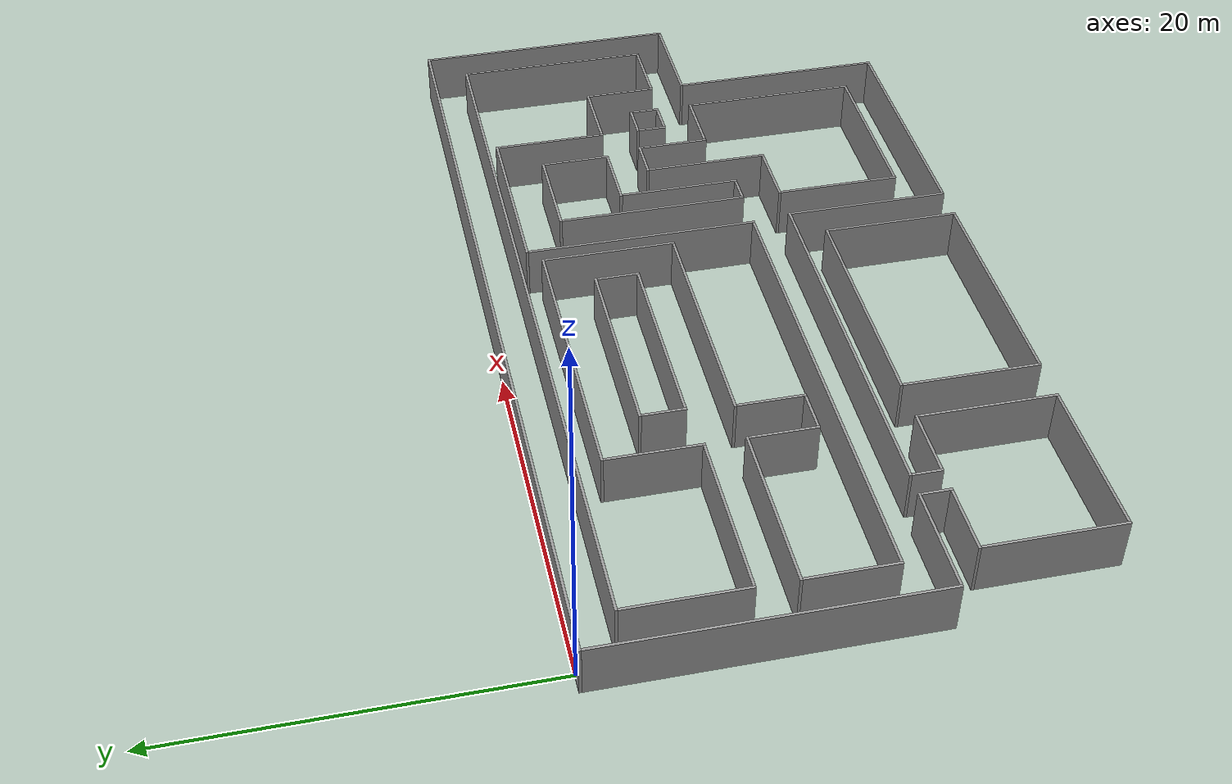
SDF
<?xml version="1.0" ?>
<sdf version="1.4">
  <model name="MultiLoops">
    <static>1</static>
    <link name="Wall_0">
      <collision name="Wall_0_Collision">
        <geometry>
          <box>
            <size>49.20000 0.15000 3.00000</size>
          </box>
        </geometry>
        <pose>24.75000 -0.22500 0 0 0 0.00000</pose>
      </collision>
      <visual name="Wall_0_Visual">
        <geometry>
          <box>
            <size>49.20000 0.15000 3.00000</size>
          </box>
        </geometry>
        <material>
          <script>
            <uri>file://media/materials/scripts/gazebo.material</uri>
            <name>Gazebo/Grey</name>
          </script>
        </material>
        <pose>24.75000 -0.22500 0 0 0 0.00000</pose>
      </visual>
    </link>
    <link name="Wall_1">
      <collision name="Wall_1_Collision">
        <geometry>
          <box>
            <size>0.15000 18.15000 3.00000</size>
          </box>
        </geometry>
        <pose>0.22500 -9.37500 0 0 0 0.00000</pose>
      </collision>
      <visual name="Wall_1_Visual">
        <geometry>
          <box>
            <size>0.15000 18.15000 3.00000</size>
          </box>
        </geometry>
        <material>
          <script>
            <uri>file://media/materials/scripts/gazebo.material</uri>
            <name>Gazebo/Grey</name>
          </script>
        </material>
        <pose>0.22500 -9.37500 0 0 0 0.00000</pose>
      </visual>
    </link>
    <link name="Wall_2">
      <collision name="Wall_2_Collision">
        <geometry>
          <box>
            <size>0.15000 15.15000 3.00000</size>
          </box>
        </geometry>
        <pose>49.27500 -7.87500 0 0 0 0.00000</pose>
      </collision>
      <visual name="Wall_2_Visual">
        <geometry>
          <box>
            <size>0.15000 15.15000 3.00000</size>
          </box>
        </geometry>
        <material>
          <script>
            <uri>file://media/materials/scripts/gazebo.material</uri>
            <name>Gazebo/Grey</name>
          </script>
        </material>
        <pose>49.27500 -7.87500 0 0 0 0.00000</pose>
      </visual>
    </link>
    <link name="Wall_3">
      <collision name="Wall_3_Collision">
        <geometry>
          <box>
            <size>45.15000 0.15000 3.00000</size>
          </box>
        </geometry>
        <pose>24.67500 -2.32500 0 0 0 0.00000</pose>
      </collision>
      <visual name="Wall_3_Visual">
        <geometry>
          <box>
            <size>45.15000 0.15000 3.00000</size>
          </box>
        </geometry>
        <material>
          <script>
            <uri>file://media/materials/scripts/gazebo.material</uri>
            <name>Gazebo/Grey</name>
          </script>
        </material>
        <pose>24.67500 -2.32500 0 0 0 0.00000</pose>
      </visual>
    </link>
    <link name="Wall_4">
      <collision name="Wall_4_Collision">
        <geometry>
          <box>
            <size>0.15000 6.60000 3.00000</size>
          </box>
        </geometry>
        <pose>2.17500 -5.70000 0 0 0 0.00000</pose>
      </collision>
      <visual name="Wall_4_Visual">
        <geometry>
          <box>
            <size>0.15000 6.60000 3.00000</size>
          </box>
        </geometry>
        <material>
          <script>
            <uri>file://media/materials/scripts/gazebo.material</uri>
            <name>Gazebo/Grey</name>
          </script>
        </material>
        <pose>2.17500 -5.70000 0 0 0 0.00000</pose>
      </visual>
    </link>
    <link name="Wall_5">
      <collision name="Wall_5_Collision">
        <geometry>
          <box>
            <size>0.15000 11.10000 3.00000</size>
          </box>
        </geometry>
        <pose>47.17500 -7.95000 0 0 0 0.00000</pose>
      </collision>
      <visual name="Wall_5_Visual">
        <geometry>
          <box>
            <size>0.15000 11.10000 3.00000</size>
          </box>
        </geometry>
        <material>
          <script>
            <uri>file://media/materials/scripts/gazebo.material</uri>
            <name>Gazebo/Grey</name>
          </script>
        </material>
        <pose>47.17500 -7.95000 0 0 0 0.00000</pose>
      </visual>
    </link>
    <link name="Wall_6">
      <collision name="Wall_6_Collision">
        <geometry>
          <box>
            <size>10.35000 0.15000 3.00000</size>
          </box>
        </geometry>
        <pose>33.82500 -2.92500 0 0 0 0.00000</pose>
      </collision>
      <visual name="Wall_6_Visual">
        <geometry>
          <box>
            <size>10.35000 0.15000 3.00000</size>
          </box>
        </geometry>
        <material>
          <script>
            <uri>file://media/materials/scripts/gazebo.material</uri>
            <name>Gazebo/Grey</name>
          </script>
        </material>
        <pose>33.82500 -2.92500 0 0 0 0.00000</pose>
      </visual>
    </link>
    <link name="Wall_7">
      <collision name="Wall_7_Collision">
        <geometry>
          <box>
            <size>0.15000 13.20000 3.00000</size>
          </box>
        </geometry>
        <pose>28.72500 -9.60000 0 0 0 0.00000</pose>
      </collision>
      <visual name="Wall_7_Visual">
        <geometry>
          <box>
            <size>0.15000 13.20000 3.00000</size>
          </box>
        </geometry>
        <material>
          <script>
            <uri>file://media/materials/scripts/gazebo.material</uri>
            <name>Gazebo/Grey</name>
          </script>
        </material>
        <pose>28.72500 -9.60000 0 0 0 0.00000</pose>
      </visual>
    </link>
    <link name="Wall_8">
      <collision name="Wall_8_Collision">
        <geometry>
          <box>
            <size>0.15000 6.45000 3.00000</size>
          </box>
        </geometry>
        <pose>38.92500 -6.22500 0 0 0 0.00000</pose>
      </collision>
      <visual name="Wall_8_Visual">
        <geometry>
          <box>
            <size>0.15000 6.45000 3.00000</size>
          </box>
        </geometry>
        <material>
          <script>
            <uri>file://media/materials/scripts/gazebo.material</uri>
            <name>Gazebo/Grey</name>
          </script>
        </material>
        <pose>38.92500 -6.22500 0 0 0 0.00000</pose>
      </visual>
    </link>
    <link name="Wall_9">
      <collision name="Wall_9_Collision">
        <geometry>
          <box>
            <size>16.20000 0.15000 3.00000</size>
          </box>
        </geometry>
        <pose>19.80000 -3.67500 0 0 0 0.00000</pose>
      </collision>
      <visual name="Wall_9_Visual">
        <geometry>
          <box>
            <size>16.20000 0.15000 3.00000</size>
          </box>
        </geometry>
        <material>
          <script>
            <uri>file://media/materials/scripts/gazebo.material</uri>
            <name>Gazebo/Grey</name>
          </script>
        </material>
        <pose>19.80000 -3.67500 0 0 0 0.00000</pose>
      </visual>
    </link>
    <link name="Wall_10">
      <collision name="Wall_10_Collision">
        <geometry>
          <box>
            <size>0.15000 5.25000 3.00000</size>
          </box>
        </geometry>
        <pose>11.77500 -6.37500 0 0 0 0.00000</pose>
      </collision>
      <visual name="Wall_10_Visual">
        <geometry>
          <box>
            <size>0.15000 5.25000 3.00000</size>
          </box>
        </geometry>
        <material>
          <script>
            <uri>file://media/materials/scripts/gazebo.material</uri>
            <name>Gazebo/Grey</name>
          </script>
        </material>
        <pose>11.77500 -6.37500 0 0 0 0.00000</pose>
      </visual>
    </link>
    <link name="Wall_11">
      <collision name="Wall_11_Collision">
        <geometry>
          <box>
            <size>0.15000 7.50000 3.00000</size>
          </box>
        </geometry>
        <pose>27.82500 -7.50000 0 0 0 0.00000</pose>
      </collision>
      <visual name="Wall_11_Visual">
        <geometry>
          <box>
            <size>0.15000 7.50000 3.00000</size>
          </box>
        </geometry>
        <material>
          <script>
            <uri>file://media/materials/scripts/gazebo.material</uri>
            <name>Gazebo/Grey</name>
          </script>
        </material>
        <pose>27.82500 -7.50000 0 0 0 0.00000</pose>
      </visual>
    </link>
    <link name="Wall_12">
      <collision name="Wall_12_Collision">
        <geometry>
          <box>
            <size>5.70000 0.15000 3.00000</size>
          </box>
        </geometry>
        <pose>33.90000 -5.32500 0 0 0 0.00000</pose>
      </collision>
      <visual name="Wall_12_Visual">
        <geometry>
          <box>
            <size>5.70000 0.15000 3.00000</size>
          </box>
        </geometry>
        <material>
          <script>
            <uri>file://media/materials/scripts/gazebo.material</uri>
            <name>Gazebo/Grey</name>
          </script>
        </material>
        <pose>33.90000 -5.32500 0 0 0 0.00000</pose>
      </visual>
    </link>
    <link name="Wall_13">
      <collision name="Wall_13_Collision">
        <geometry>
          <box>
            <size>0.15000 10.80000 3.00000</size>
          </box>
        </geometry>
        <pose>31.12500 -10.80000 0 0 0 0.00000</pose>
      </collision>
      <visual name="Wall_13_Visual">
        <geometry>
          <box>
            <size>0.15000 10.80000 3.00000</size>
          </box>
        </geometry>
        <material>
          <script>
            <uri>file://media/materials/scripts/gazebo.material</uri>
            <name>Gazebo/Grey</name>
          </script>
        </material>
        <pose>31.12500 -10.80000 0 0 0 0.00000</pose>
      </visual>
    </link>
    <link name="Wall_14">
      <collision name="Wall_14_Collision">
        <geometry>
          <box>
            <size>0.15000 3.90000 3.00000</size>
          </box>
        </geometry>
        <pose>36.67500 -7.35000 0 0 0 0.00000</pose>
      </collision>
      <visual name="Wall_14_Visual">
        <geometry>
          <box>
            <size>0.15000 3.90000 3.00000</size>
          </box>
        </geometry>
        <material>
          <script>
            <uri>file://media/materials/scripts/gazebo.material</uri>
            <name>Gazebo/Grey</name>
          </script>
        </material>
        <pose>36.67500 -7.35000 0 0 0 0.00000</pose>
      </visual>
    </link>
    <link name="Wall_15">
      <collision name="Wall_15_Collision">
        <geometry>
          <box>
            <size>11.25000 0.15000 3.00000</size>
          </box>
        </geometry>
        <pose>20.02500 -6.22500 0 0 0 0.00000</pose>
      </collision>
      <visual name="Wall_15_Visual">
        <geometry>
          <box>
            <size>11.25000 0.15000 3.00000</size>
          </box>
        </geometry>
        <material>
          <script>
            <uri>file://media/materials/scripts/gazebo.material</uri>
            <name>Gazebo/Grey</name>
          </script>
        </material>
        <pose>20.02500 -6.22500 0 0 0 0.00000</pose>
      </visual>
    </link>
    <link name="Wall_16">
      <collision name="Wall_16_Collision">
        <geometry>
          <box>
            <size>0.15000 2.40000 3.00000</size>
          </box>
        </geometry>
        <pose>14.47500 -7.50000 0 0 0 0.00000</pose>
      </collision>
      <visual name="Wall_16_Visual">
        <geometry>
          <box>
            <size>0.15000 2.40000 3.00000</size>
          </box>
        </geometry>
        <material>
          <script>
            <uri>file://media/materials/scripts/gazebo.material</uri>
            <name>Gazebo/Grey</name>
          </script>
        </material>
        <pose>14.47500 -7.50000 0 0 0 0.00000</pose>
      </visual>
    </link>
    <link name="Wall_17">
      <collision name="Wall_17_Collision">
        <geometry>
          <box>
            <size>0.15000 2.40000 3.00000</size>
          </box>
        </geometry>
        <pose>25.57500 -7.50000 0 0 0 0.00000</pose>
      </collision>
      <visual name="Wall_17_Visual">
        <geometry>
          <box>
            <size>0.15000 2.40000 3.00000</size>
          </box>
        </geometry>
        <material>
          <script>
            <uri>file://media/materials/scripts/gazebo.material</uri>
            <name>Gazebo/Grey</name>
          </script>
        </material>
        <pose>25.57500 -7.50000 0 0 0 0.00000</pose>
      </visual>
    </link>
    <link name="Wall_18">
      <collision name="Wall_18_Collision">
        <geometry>
          <box>
            <size>10.95000 0.15000 3.00000</size>
          </box>
        </geometry>
        <pose>20.02500 -8.62500 0 0 0 0.00000</pose>
      </collision>
      <visual name="Wall_18_Visual">
        <geometry>
          <box>
            <size>10.95000 0.15000 3.00000</size>
          </box>
        </geometry>
        <material>
          <script>
            <uri>file://media/materials/scripts/gazebo.material</uri>
            <name>Gazebo/Grey</name>
          </script>
        </material>
        <pose>20.02500 -8.62500 0 0 0 0.00000</pose>
      </visual>
    </link>
    <link name="Wall_19">
      <collision name="Wall_19_Collision">
        <geometry>
          <box>
            <size>9.45000 0.15000 3.00000</size>
          </box>
        </geometry>
        <pose>6.97500 -8.92500 0 0 0 0.00000</pose>
      </collision>
      <visual name="Wall_19_Visual">
        <geometry>
          <box>
            <size>9.45000 0.15000 3.00000</size>
          </box>
        </geometry>
        <material>
          <script>
            <uri>file://media/materials/scripts/gazebo.material</uri>
            <name>Gazebo/Grey</name>
          </script>
        </material>
        <pose>6.97500 -8.92500 0 0 0 0.00000</pose>
      </visual>
    </link>
    <link name="Wall_20">
      <collision name="Wall_20_Collision">
        <geometry>
          <box>
            <size>3.90000 0.15000 3.00000</size>
          </box>
        </geometry>
        <pose>34.65000 -9.22500 0 0 0 0.00000</pose>
      </collision>
      <visual name="Wall_20_Visual">
        <geometry>
          <box>
            <size>3.90000 0.15000 3.00000</size>
          </box>
        </geometry>
        <material>
          <script>
            <uri>file://media/materials/scripts/gazebo.material</uri>
            <name>Gazebo/Grey</name>
          </script>
        </material>
        <pose>34.65000 -9.22500 0 0 0 0.00000</pose>
      </visual>
    </link>
    <link name="Wall_21">
      <collision name="Wall_21_Collision">
        <geometry>
          <box>
            <size>0.15000 6.90000 3.00000</size>
          </box>
        </geometry>
        <pose>32.77500 -12.75000 0 0 0 0.00000</pose>
      </collision>
      <visual name="Wall_21_Visual">
        <geometry>
          <box>
            <size>0.15000 6.90000 3.00000</size>
          </box>
        </geometry>
        <material>
          <script>
            <uri>file://media/materials/scripts/gazebo.material</uri>
            <name>Gazebo/Grey</name>
          </script>
        </material>
        <pose>32.77500 -12.75000 0 0 0 0.00000</pose>
      </visual>
    </link>
    <link name="Wall_22">
      <collision name="Wall_22_Collision">
        <geometry>
          <box>
            <size>4.20000 0.15000 3.00000</size>
          </box>
        </geometry>
        <pose>41.10000 -9.37500 0 0 0 0.00000</pose>
      </collision>
      <visual name="Wall_22_Visual">
        <geometry>
          <box>
            <size>4.20000 0.15000 3.00000</size>
          </box>
        </geometry>
        <material>
          <script>
            <uri>file://media/materials/scripts/gazebo.material</uri>
            <name>Gazebo/Grey</name>
          </script>
        </material>
        <pose>41.10000 -9.37500 0 0 0 0.00000</pose>
      </visual>
    </link>
    <link name="Wall_23">
      <collision name="Wall_23_Collision">
        <geometry>
          <box>
            <size>0.15000 4.05000 3.00000</size>
          </box>
        </geometry>
        <pose>43.12500 -11.47500 0 0 0 0.00000</pose>
      </collision>
      <visual name="Wall_23_Visual">
        <geometry>
          <box>
            <size>0.15000 4.05000 3.00000</size>
          </box>
        </geometry>
        <material>
          <script>
            <uri>file://media/materials/scripts/gazebo.material</uri>
            <name>Gazebo/Grey</name>
          </script>
        </material>
        <pose>43.12500 -11.47500 0 0 0 0.00000</pose>
      </visual>
    </link>
    <link name="Wall_24">
      <collision name="Wall_24_Collision">
        <geometry>
          <box>
            <size>9.75000 0.15000 3.00000</size>
          </box>
        </geometry>
        <pose>6.97500 -11.17500 0 0 0 0.00000</pose>
      </collision>
      <visual name="Wall_24_Visual">
        <geometry>
          <box>
            <size>9.75000 0.15000 3.00000</size>
          </box>
        </geometry>
        <material>
          <script>
            <uri>file://media/materials/scripts/gazebo.material</uri>
            <name>Gazebo/Grey</name>
          </script>
        </material>
        <pose>6.97500 -11.17500 0 0 0 0.00000</pose>
      </visual>
    </link>
    <link name="Wall_25">
      <collision name="Wall_25_Collision">
        <geometry>
          <box>
            <size>13.65000 0.15000 3.00000</size>
          </box>
        </geometry>
        <pose>20.92500 -11.17500 0 0 0 0.00000</pose>
      </collision>
      <visual name="Wall_25_Visual">
        <geometry>
          <box>
            <size>13.65000 0.15000 3.00000</size>
          </box>
        </geometry>
        <material>
          <script>
            <uri>file://media/materials/scripts/gazebo.material</uri>
            <name>Gazebo/Grey</name>
          </script>
        </material>
        <pose>20.92500 -11.17500 0 0 0 0.00000</pose>
      </visual>
    </link>
    <link name="Wall_26">
      <collision name="Wall_26_Collision">
        <geometry>
          <box>
            <size>0.15000 4.95000 3.00000</size>
          </box>
        </geometry>
        <pose>2.17500 -13.72500 0 0 0 0.00000</pose>
      </collision>
      <visual name="Wall_26_Visual">
        <geometry>
          <box>
            <size>0.15000 4.95000 3.00000</size>
          </box>
        </geometry>
        <material>
          <script>
            <uri>file://media/materials/scripts/gazebo.material</uri>
            <name>Gazebo/Grey</name>
          </script>
        </material>
        <pose>2.17500 -13.72500 0 0 0 0.00000</pose>
      </visual>
    </link>
    <link name="Wall_27">
      <collision name="Wall_27_Collision">
        <geometry>
          <box>
            <size>0.15000 3.75000 3.00000</size>
          </box>
        </geometry>
        <pose>11.77500 -13.12500 0 0 0 0.00000</pose>
      </collision>
      <visual name="Wall_27_Visual">
        <geometry>
          <box>
            <size>0.15000 3.75000 3.00000</size>
          </box>
        </geometry>
        <material>
          <script>
            <uri>file://media/materials/scripts/gazebo.material</uri>
            <name>Gazebo/Grey</name>
          </script>
        </material>
        <pose>11.77500 -13.12500 0 0 0 0.00000</pose>
      </visual>
    </link>
    <link name="Wall_28">
      <collision name="Wall_28_Collision">
        <geometry>
          <box>
            <size>0.15000 3.75000 3.00000</size>
          </box>
        </geometry>
        <pose>14.17500 -13.12500 0 0 0 0.00000</pose>
      </collision>
      <visual name="Wall_28_Visual">
        <geometry>
          <box>
            <size>0.15000 3.75000 3.00000</size>
          </box>
        </geometry>
        <material>
          <script>
            <uri>file://media/materials/scripts/gazebo.material</uri>
            <name>Gazebo/Grey</name>
          </script>
        </material>
        <pose>14.17500 -13.12500 0 0 0 0.00000</pose>
      </visual>
    </link>
    <link name="Wall_29">
      <collision name="Wall_29_Collision">
        <geometry>
          <box>
            <size>2.40000 0.15000 3.00000</size>
          </box>
        </geometry>
        <pose>36.00000 -11.32500 0 0 0 0.00000</pose>
      </collision>
      <visual name="Wall_29_Visual">
        <geometry>
          <box>
            <size>2.40000 0.15000 3.00000</size>
          </box>
        </geometry>
        <material>
          <script>
            <uri>file://media/materials/scripts/gazebo.material</uri>
            <name>Gazebo/Grey</name>
          </script>
        </material>
        <pose>36.00000 -11.32500 0 0 0 0.00000</pose>
      </visual>
    </link>
    <link name="Wall_30">
      <collision name="Wall_30_Collision">
        <geometry>
          <box>
            <size>0.15000 7.05000 3.00000</size>
          </box>
        </geometry>
        <pose>34.87500 -14.92500 0 0 0 0.00000</pose>
      </collision>
      <visual name="Wall_30_Visual">
        <geometry>
          <box>
            <size>0.15000 7.05000 3.00000</size>
          </box>
        </geometry>
        <material>
          <script>
            <uri>file://media/materials/scripts/gazebo.material</uri>
            <name>Gazebo/Grey</name>
          </script>
        </material>
        <pose>34.87500 -14.92500 0 0 0 0.00000</pose>
      </visual>
    </link>
    <link name="Wall_31">
      <collision name="Wall_31_Collision">
        <geometry>
          <box>
            <size>0.15000 4.05000 3.00000</size>
          </box>
        </geometry>
        <pose>37.12500 -13.42500 0 0 0 0.00000</pose>
      </collision>
      <visual name="Wall_31_Visual">
        <geometry>
          <box>
            <size>0.15000 4.05000 3.00000</size>
          </box>
        </geometry>
        <material>
          <script>
            <uri>file://media/materials/scripts/gazebo.material</uri>
            <name>Gazebo/Grey</name>
          </script>
        </material>
        <pose>37.12500 -13.42500 0 0 0 0.00000</pose>
      </visual>
    </link>
    <link name="Wall_32">
      <collision name="Wall_32_Collision">
        <geometry>
          <box>
            <size>2.10000 0.15000 3.00000</size>
          </box>
        </geometry>
        <pose>39.90000 -11.62500 0 0 0 0.00000</pose>
      </collision>
      <visual name="Wall_32_Visual">
        <geometry>
          <box>
            <size>2.10000 0.15000 3.00000</size>
          </box>
        </geometry>
        <material>
          <script>
            <uri>file://media/materials/scripts/gazebo.material</uri>
            <name>Gazebo/Grey</name>
          </script>
        </material>
        <pose>39.90000 -11.62500 0 0 0 0.00000</pose>
      </visual>
    </link>
    <link name="Wall_33">
      <collision name="Wall_33_Collision">
        <geometry>
          <box>
            <size>0.15000 1.65000 3.00000</size>
          </box>
        </geometry>
        <pose>38.92500 -12.52500 0 0 0 0.00000</pose>
      </collision>
      <visual name="Wall_33_Visual">
        <geometry>
          <box>
            <size>0.15000 1.65000 3.00000</size>
          </box>
        </geometry>
        <material>
          <script>
            <uri>file://media/materials/scripts/gazebo.material</uri>
            <name>Gazebo/Grey</name>
          </script>
        </material>
        <pose>38.92500 -12.52500 0 0 0 0.00000</pose>
      </visual>
    </link>
    <link name="Wall_34">
      <collision name="Wall_34_Collision">
        <geometry>
          <box>
            <size>0.15000 1.65000 3.00000</size>
          </box>
        </geometry>
        <pose>40.87500 -12.52500 0 0 0 0.00000</pose>
      </collision>
      <visual name="Wall_34_Visual">
        <geometry>
          <box>
            <size>0.15000 1.65000 3.00000</size>
          </box>
        </geometry>
        <material>
          <script>
            <uri>file://media/materials/scripts/gazebo.material</uri>
            <name>Gazebo/Grey</name>
          </script>
        </material>
        <pose>40.87500 -12.52500 0 0 0 0.00000</pose>
      </visual>
    </link>
    <link name="Wall_35">
      <collision name="Wall_35_Collision">
        <geometry>
          <box>
            <size>1.80000 0.15000 3.00000</size>
          </box>
        </geometry>
        <pose>39.90000 -13.27500 0 0 0 0.00000</pose>
      </collision>
      <visual name="Wall_35_Visual">
        <geometry>
          <box>
            <size>1.80000 0.15000 3.00000</size>
          </box>
        </geometry>
        <material>
          <script>
            <uri>file://media/materials/scripts/gazebo.material</uri>
            <name>Gazebo/Grey</name>
          </script>
        </material>
        <pose>39.90000 -13.27500 0 0 0 0.00000</pose>
      </visual>
    </link>
    <link name="Wall_36">
      <collision name="Wall_36_Collision">
        <geometry>
          <box>
            <size>3.90000 0.15000 3.00000</size>
          </box>
        </geometry>
        <pose>45.15000 -13.42500 0 0 0 0.00000</pose>
      </collision>
      <visual name="Wall_36_Visual">
        <geometry>
          <box>
            <size>3.90000 0.15000 3.00000</size>
          </box>
        </geometry>
        <material>
          <script>
            <uri>file://media/materials/scripts/gazebo.material</uri>
            <name>Gazebo/Grey</name>
          </script>
        </material>
        <pose>45.15000 -13.42500 0 0 0 0.00000</pose>
      </visual>
    </link>
    <link name="Wall_37">
      <collision name="Wall_37_Collision">
        <geometry>
          <box>
            <size>2.25000 0.15000 3.00000</size>
          </box>
        </geometry>
        <pose>12.97500 -14.92500 0 0 0 0.00000</pose>
      </collision>
      <visual name="Wall_37_Visual">
        <geometry>
          <box>
            <size>2.25000 0.15000 3.00000</size>
          </box>
        </geometry>
        <material>
          <script>
            <uri>file://media/materials/scripts/gazebo.material</uri>
            <name>Gazebo/Grey</name>
          </script>
        </material>
        <pose>12.97500 -14.92500 0 0 0 0.00000</pose>
      </visual>
    </link>
    <link name="Wall_38">
      <collision name="Wall_38_Collision">
        <geometry>
          <box>
            <size>3.75000 0.15000 3.00000</size>
          </box>
        </geometry>
        <pose>39.07500 -15.37500 0 0 0 0.00000</pose>
      </collision>
      <visual name="Wall_38_Visual">
        <geometry>
          <box>
            <size>3.75000 0.15000 3.00000</size>
          </box>
        </geometry>
        <material>
          <script>
            <uri>file://media/materials/scripts/gazebo.material</uri>
            <name>Gazebo/Grey</name>
          </script>
        </material>
        <pose>39.07500 -15.37500 0 0 0 0.00000</pose>
      </visual>
    </link>
    <link name="Wall_39">
      <collision name="Wall_39_Collision">
        <geometry>
          <box>
            <size>6.15000 0.15000 3.00000</size>
          </box>
        </geometry>
        <pose>46.12500 -15.37500 0 0 0 0.00000</pose>
      </collision>
      <visual name="Wall_39_Visual">
        <geometry>
          <box>
            <size>6.15000 0.15000 3.00000</size>
          </box>
        </geometry>
        <material>
          <script>
            <uri>file://media/materials/scripts/gazebo.material</uri>
            <name>Gazebo/Grey</name>
          </script>
        </material>
        <pose>46.12500 -15.37500 0 0 0 0.00000</pose>
      </visual>
    </link>
    <link name="Wall_40">
      <collision name="Wall_40_Collision">
        <geometry>
          <box>
            <size>0.15000 10.05000 3.00000</size>
          </box>
        </geometry>
        <pose>40.87500 -20.47500 0 0 0 0.00000</pose>
      </collision>
      <visual name="Wall_40_Visual">
        <geometry>
          <box>
            <size>0.15000 10.05000 3.00000</size>
          </box>
        </geometry>
        <material>
          <script>
            <uri>file://media/materials/scripts/gazebo.material</uri>
            <name>Gazebo/Grey</name>
          </script>
        </material>
        <pose>40.87500 -20.47500 0 0 0 0.00000</pose>
      </visual>
    </link>
    <link name="Wall_41">
      <collision name="Wall_41_Collision">
        <geometry>
          <box>
            <size>0.15000 12.30000 3.00000</size>
          </box>
        </geometry>
        <pose>43.12500 -21.60000 0 0 0 0.00000</pose>
      </collision>
      <visual name="Wall_41_Visual">
        <geometry>
          <box>
            <size>0.15000 12.30000 3.00000</size>
          </box>
        </geometry>
        <material>
          <script>
            <uri>file://media/materials/scripts/gazebo.material</uri>
            <name>Gazebo/Grey</name>
          </script>
        </material>
        <pose>43.12500 -21.60000 0 0 0 0.00000</pose>
      </visual>
    </link>
    <link name="Wall_42">
      <collision name="Wall_42_Collision">
        <geometry>
          <box>
            <size>26.40000 0.15000 3.00000</size>
          </box>
        </geometry>
        <pose>15.45000 -16.12500 0 0 0 0.00000</pose>
      </collision>
      <visual name="Wall_42_Visual">
        <geometry>
          <box>
            <size>26.40000 0.15000 3.00000</size>
          </box>
        </geometry>
        <material>
          <script>
            <uri>file://media/materials/scripts/gazebo.material</uri>
            <name>Gazebo/Grey</name>
          </script>
        </material>
        <pose>15.45000 -16.12500 0 0 0 0.00000</pose>
      </visual>
    </link>
    <link name="Wall_43">
      <collision name="Wall_43_Collision">
        <geometry>
          <box>
            <size>1.50000 0.15000 3.00000</size>
          </box>
        </geometry>
        <pose>31.95000 -16.12500 0 0 0 0.00000</pose>
      </collision>
      <visual name="Wall_43_Visual">
        <geometry>
          <box>
            <size>1.50000 0.15000 3.00000</size>
          </box>
        </geometry>
        <material>
          <script>
            <uri>file://media/materials/scripts/gazebo.material</uri>
            <name>Gazebo/Grey</name>
          </script>
        </material>
        <pose>31.95000 -16.12500 0 0 0 0.00000</pose>
      </visual>
    </link>
    <link name="Wall_44">
      <collision name="Wall_44_Collision">
        <geometry>
          <box>
            <size>6.00000 0.15000 3.00000</size>
          </box>
        </geometry>
        <pose>3.30000 -18.37500 0 0 0 0.00000</pose>
      </collision>
      <visual name="Wall_44_Visual">
        <geometry>
          <box>
            <size>6.00000 0.15000 3.00000</size>
          </box>
        </geometry>
        <material>
          <script>
            <uri>file://media/materials/scripts/gazebo.material</uri>
            <name>Gazebo/Grey</name>
          </script>
        </material>
        <pose>3.30000 -18.37500 0 0 0 0.00000</pose>
      </visual>
    </link>
    <link name="Wall_45">
      <collision name="Wall_45_Collision">
        <geometry>
          <box>
            <size>21.60000 0.15000 3.00000</size>
          </box>
        </geometry>
        <pose>18.30000 -18.37500 0 0 0 0.00000</pose>
      </collision>
      <visual name="Wall_45_Visual">
        <geometry>
          <box>
            <size>21.60000 0.15000 3.00000</size>
          </box>
        </geometry>
        <material>
          <script>
            <uri>file://media/materials/scripts/gazebo.material</uri>
            <name>Gazebo/Grey</name>
          </script>
        </material>
        <pose>18.30000 -18.37500 0 0 0 0.00000</pose>
      </visual>
    </link>
    <link name="Wall_46">
      <collision name="Wall_46_Collision">
        <geometry>
          <box>
            <size>3.75000 0.15000 3.00000</size>
          </box>
        </geometry>
        <pose>32.92500 -18.37500 0 0 0 0.00000</pose>
      </collision>
      <visual name="Wall_46_Visual">
        <geometry>
          <box>
            <size>3.75000 0.15000 3.00000</size>
          </box>
        </geometry>
        <material>
          <script>
            <uri>file://media/materials/scripts/gazebo.material</uri>
            <name>Gazebo/Grey</name>
          </script>
        </material>
        <pose>32.92500 -18.37500 0 0 0 0.00000</pose>
      </visual>
    </link>
    <link name="Wall_47">
      <collision name="Wall_47_Collision">
        <geometry>
          <box>
            <size>0.15000 1.65000 3.00000</size>
          </box>
        </geometry>
        <pose>6.22500 -19.27500 0 0 0 0.00000</pose>
      </collision>
      <visual name="Wall_47_Visual">
        <geometry>
          <box>
            <size>0.15000 1.65000 3.00000</size>
          </box>
        </geometry>
        <material>
          <script>
            <uri>file://media/materials/scripts/gazebo.material</uri>
            <name>Gazebo/Grey</name>
          </script>
        </material>
        <pose>6.22500 -19.27500 0 0 0 0.00000</pose>
      </visual>
    </link>
    <link name="Wall_48">
      <collision name="Wall_48_Collision">
        <geometry>
          <box>
            <size>0.15000 1.65000 3.00000</size>
          </box>
        </geometry>
        <pose>7.57500 -19.27500 0 0 0 0.00000</pose>
      </collision>
      <visual name="Wall_48_Visual">
        <geometry>
          <box>
            <size>0.15000 1.65000 3.00000</size>
          </box>
        </geometry>
        <material>
          <script>
            <uri>file://media/materials/scripts/gazebo.material</uri>
            <name>Gazebo/Grey</name>
          </script>
        </material>
        <pose>7.57500 -19.27500 0 0 0 0.00000</pose>
      </visual>
    </link>
    <link name="Wall_49">
      <collision name="Wall_49_Collision">
        <geometry>
          <box>
            <size>0.15000 9.30000 3.00000</size>
          </box>
        </geometry>
        <pose>29.02500 -23.10000 0 0 0 0.00000</pose>
      </collision>
      <visual name="Wall_49_Visual">
        <geometry>
          <box>
            <size>0.15000 9.30000 3.00000</size>
          </box>
        </geometry>
        <material>
          <script>
            <uri>file://media/materials/scripts/gazebo.material</uri>
            <name>Gazebo/Grey</name>
          </script>
        </material>
        <pose>29.02500 -23.10000 0 0 0 0.00000</pose>
      </visual>
    </link>
    <link name="Wall_50">
      <collision name="Wall_50_Collision">
        <geometry>
          <box>
            <size>0.15000 7.05000 3.00000</size>
          </box>
        </geometry>
        <pose>31.12500 -21.97500 0 0 0 0.00000</pose>
      </collision>
      <visual name="Wall_50_Visual">
        <geometry>
          <box>
            <size>0.15000 7.05000 3.00000</size>
          </box>
        </geometry>
        <material>
          <script>
            <uri>file://media/materials/scripts/gazebo.material</uri>
            <name>Gazebo/Grey</name>
          </script>
        </material>
        <pose>31.12500 -21.97500 0 0 0 0.00000</pose>
      </visual>
    </link>
    <link name="Wall_51">
      <collision name="Wall_51_Collision">
        <geometry>
          <box>
            <size>3.90000 0.15000 3.00000</size>
          </box>
        </geometry>
        <pose>4.20000 -20.02500 0 0 0 0.00000</pose>
      </collision>
      <visual name="Wall_51_Visual">
        <geometry>
          <box>
            <size>3.90000 0.15000 3.00000</size>
          </box>
        </geometry>
        <material>
          <script>
            <uri>file://media/materials/scripts/gazebo.material</uri>
            <name>Gazebo/Grey</name>
          </script>
        </material>
        <pose>4.20000 -20.02500 0 0 0 0.00000</pose>
      </visual>
    </link>
    <link name="Wall_52">
      <collision name="Wall_52_Collision">
        <geometry>
          <box>
            <size>3.90000 0.15000 3.00000</size>
          </box>
        </geometry>
        <pose>9.60000 -20.02500 0 0 0 0.00000</pose>
      </collision>
      <visual name="Wall_52_Visual">
        <geometry>
          <box>
            <size>3.90000 0.15000 3.00000</size>
          </box>
        </geometry>
        <material>
          <script>
            <uri>file://media/materials/scripts/gazebo.material</uri>
            <name>Gazebo/Grey</name>
          </script>
        </material>
        <pose>9.60000 -20.02500 0 0 0 0.00000</pose>
      </visual>
    </link>
    <link name="Wall_53">
      <collision name="Wall_53_Collision">
        <geometry>
          <box>
            <size>13.35000 0.15000 3.00000</size>
          </box>
        </geometry>
        <pose>20.47500 -20.02500 0 0 0 0.00000</pose>
      </collision>
      <visual name="Wall_53_Visual">
        <geometry>
          <box>
            <size>13.35000 0.15000 3.00000</size>
          </box>
        </geometry>
        <material>
          <script>
            <uri>file://media/materials/scripts/gazebo.material</uri>
            <name>Gazebo/Grey</name>
          </script>
        </material>
        <pose>20.47500 -20.02500 0 0 0 0.00000</pose>
      </visual>
    </link>
    <link name="Wall_54">
      <collision name="Wall_54_Collision">
        <geometry>
          <box>
            <size>0.15000 7.65000 3.00000</size>
          </box>
        </geometry>
        <pose>2.32500 -23.92500 0 0 0 0.00000</pose>
      </collision>
      <visual name="Wall_54_Visual">
        <geometry>
          <box>
            <size>0.15000 7.65000 3.00000</size>
          </box>
        </geometry>
        <material>
          <script>
            <uri>file://media/materials/scripts/gazebo.material</uri>
            <name>Gazebo/Grey</name>
          </script>
        </material>
        <pose>2.32500 -23.92500 0 0 0 0.00000</pose>
      </visual>
    </link>
    <link name="Wall_55">
      <collision name="Wall_55_Collision">
        <geometry>
          <box>
            <size>0.15000 7.65000 3.00000</size>
          </box>
        </geometry>
        <pose>11.47500 -23.92500 0 0 0 0.00000</pose>
      </collision>
      <visual name="Wall_55_Visual">
        <geometry>
          <box>
            <size>0.15000 7.65000 3.00000</size>
          </box>
        </geometry>
        <material>
          <script>
            <uri>file://media/materials/scripts/gazebo.material</uri>
            <name>Gazebo/Grey</name>
          </script>
        </material>
        <pose>11.47500 -23.92500 0 0 0 0.00000</pose>
      </visual>
    </link>
    <link name="Wall_56">
      <collision name="Wall_56_Collision">
        <geometry>
          <box>
            <size>0.15000 7.65000 3.00000</size>
          </box>
        </geometry>
        <pose>13.87500 -23.92500 0 0 0 0.00000</pose>
      </collision>
      <visual name="Wall_56_Visual">
        <geometry>
          <box>
            <size>0.15000 7.65000 3.00000</size>
          </box>
        </geometry>
        <material>
          <script>
            <uri>file://media/materials/scripts/gazebo.material</uri>
            <name>Gazebo/Grey</name>
          </script>
        </material>
        <pose>13.87500 -23.92500 0 0 0 0.00000</pose>
      </visual>
    </link>
    <link name="Wall_57">
      <collision name="Wall_57_Collision">
        <geometry>
          <box>
            <size>0.15000 7.65000 3.00000</size>
          </box>
        </geometry>
        <pose>27.07500 -23.92500 0 0 0 0.00000</pose>
      </collision>
      <visual name="Wall_57_Visual">
        <geometry>
          <box>
            <size>0.15000 7.65000 3.00000</size>
          </box>
        </geometry>
        <material>
          <script>
            <uri>file://media/materials/scripts/gazebo.material</uri>
            <name>Gazebo/Grey</name>
          </script>
        </material>
        <pose>27.07500 -23.92500 0 0 0 0.00000</pose>
      </visual>
    </link>
    <link name="Wall_58">
      <collision name="Wall_58_Collision">
        <geometry>
          <box>
            <size>9.60000 0.15000 3.00000</size>
          </box>
        </geometry>
        <pose>36.00000 -25.42500 0 0 0 0.00000</pose>
      </collision>
      <visual name="Wall_58_Visual">
        <geometry>
          <box>
            <size>9.60000 0.15000 3.00000</size>
          </box>
        </geometry>
        <material>
          <script>
            <uri>file://media/materials/scripts/gazebo.material</uri>
            <name>Gazebo/Grey</name>
          </script>
        </material>
        <pose>36.00000 -25.42500 0 0 0 0.00000</pose>
      </visual>
    </link>
    <link name="Wall_59">
      <collision name="Wall_59_Collision">
        <geometry>
          <box>
            <size>9.00000 0.15000 3.00000</size>
          </box>
        </geometry>
        <pose>6.90000 -27.67500 0 0 0 0.00000</pose>
      </collision>
      <visual name="Wall_59_Visual">
        <geometry>
          <box>
            <size>9.00000 0.15000 3.00000</size>
          </box>
        </geometry>
        <material>
          <script>
            <uri>file://media/materials/scripts/gazebo.material</uri>
            <name>Gazebo/Grey</name>
          </script>
        </material>
        <pose>6.90000 -27.67500 0 0 0 0.00000</pose>
      </visual>
    </link>
    <link name="Wall_60">
      <collision name="Wall_60_Collision">
        <geometry>
          <box>
            <size>13.05000 0.15000 3.00000</size>
          </box>
        </geometry>
        <pose>20.47500 -27.67500 0 0 0 0.00000</pose>
      </collision>
      <visual name="Wall_60_Visual">
        <geometry>
          <box>
            <size>13.05000 0.15000 3.00000</size>
          </box>
        </geometry>
        <material>
          <script>
            <uri>file://media/materials/scripts/gazebo.material</uri>
            <name>Gazebo/Grey</name>
          </script>
        </material>
        <pose>20.47500 -27.67500 0 0 0 0.00000</pose>
      </visual>
    </link>
    <link name="Wall_61">
      <collision name="Wall_61_Collision">
        <geometry>
          <box>
            <size>13.95000 0.15000 3.00000</size>
          </box>
        </geometry>
        <pose>36.07500 -27.67500 0 0 0 0.00000</pose>
      </collision>
      <visual name="Wall_61_Visual">
        <geometry>
          <box>
            <size>13.95000 0.15000 3.00000</size>
          </box>
        </geometry>
        <material>
          <script>
            <uri>file://media/materials/scripts/gazebo.material</uri>
            <name>Gazebo/Grey</name>
          </script>
        </material>
        <pose>36.07500 -27.67500 0 0 0 0.00000</pose>
      </visual>
    </link>
  </model>
</sdf>
